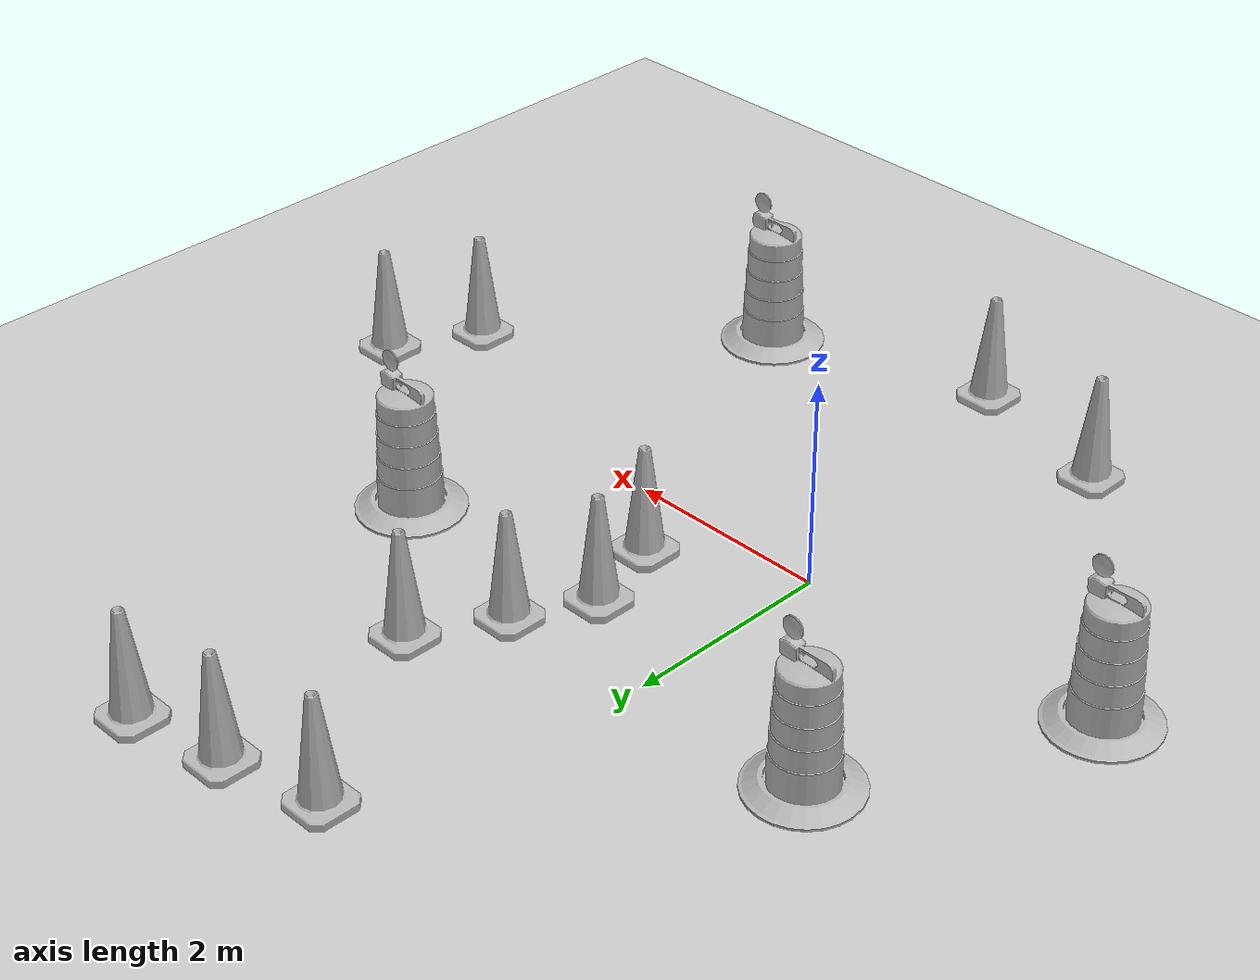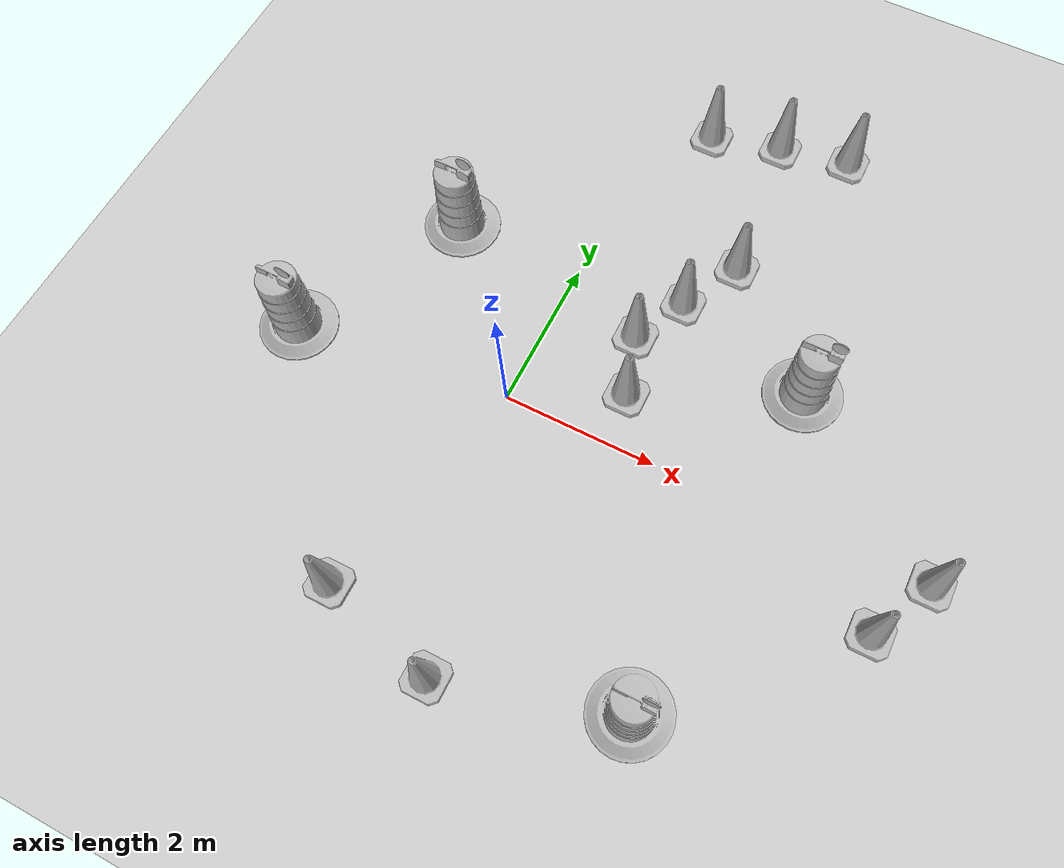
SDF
<sdf version="1.7">
 <world name="default">
  <light name="sun" type="directional">
   <pose>0 0 10 0 -0 0</pose>
   <diffuse>0.8 0.8 0.8 1</diffuse>
   <specular>0.2 0.2 0.2 1</specular>
   <attenuation>
    <range>1000</range>
    <constant>0.9</constant>
    <linear>0.01</linear>
    <quadratic>0.001</quadratic>
   </attenuation>
   <direction>-0.5 0.1 -0.9</direction>
   <spot><inner_angle>0</inner_angle><outer_angle>0</outer_angle><falloff>0</falloff></spot>
  </light>
  <model name="ground_plane">
   <static>1</static>
   <link name="link">
    <collision name="collision">
     <geometry><plane><normal>0 0 1</normal><size>100 100</size></plane></geometry>
     <surface>
      <contact><collide_bitmask>65535</collide_bitmask></contact>
      <friction><ode><mu>100</mu><mu2>50</mu2></ode></friction>
     </surface>
    </collision>
    <visual name="visual">
     <cast_shadows>0</cast_shadows>
     <geometry><plane><normal>0 0 1</normal><size>100 100</size></plane></geometry>
     <material>
      <script><uri>file://media/materials/scripts/gazebo.material</uri><name>Gazebo/Grey</name></script>
     </material>
    </visual>
   </link>
  </model>
  <gravity>0 0 -9.8</gravity>
  <magnetic_field>6e-06 2.3e-05 -4.2e-05</magnetic_field>
  <atmosphere type="adiabatic"/>
  <physics type="ode">
   <max_step_size>0.001</max_step_size>
   <real_time_factor>1</real_time_factor>
   <real_time_update_rate>1000</real_time_update_rate>
  </physics>
  <scene><ambient>0.4 0.4 0.4 1</ambient><background>0.7 0.7 0.7 1</background><shadows>1</shadows></scene>
  <audio><device>default</device></audio>
  <spherical_coordinates>
   <surface_model>EARTH_WGS84</surface_model>
   <latitude_deg>0</latitude_deg>
   <longitude_deg>0</longitude_deg>
   <elevation>0</elevation>
   <heading_deg>0</heading_deg>
  </spherical_coordinates>
  <model name="Construction Barrel">
   <link name="link">
    <inertial>
     <pose>0 0 0.4 0 -0 0</pose>
     <mass>500</mass>
     <inertia><ixx>51.2096</ixx><iyy>51.2096</iyy><izz>25</izz><ixy>0</ixy><ixz>0</ixz><iyz>0</iyz></inertia>
    </inertial>
    <collision name="collision">
     <geometry><mesh><uri>model://construction_barrel/meshes/construction_barrel.dae</uri></mesh></geometry>
    </collision>
    <visual name="visual">
     <geometry><mesh><uri>model://construction_barrel/meshes/construction_barrel.dae</uri></mesh></geometry>
    </visual>
   </link>
   <pose>-1.7306 1.97182 -0 0 -0 -2.5e-05</pose>
  </model>
  <model name="Construction Barrel_0">
   <link name="link">
    <inertial>
     <pose>0 0 0.4 0 -0 0</pose>
     <mass>500</mass>
     <inertia><ixx>51.2096</ixx><iyy>51.2096</iyy><izz>25</izz><ixy>0</ixy><ixz>0</ixz><iyz>0</iyz></inertia>
    </inertial>
    <collision name="collision">
     <geometry><mesh><uri>model://construction_barrel/meshes/construction_barrel.dae</uri></mesh></geometry>
    </collision>
    <visual name="visual">
     <geometry><mesh><uri>model://construction_barrel/meshes/construction_barrel.dae</uri></mesh></geometry>
    </visual>
   </link>
   <pose>-2.87179 -0.286902 -0 0 -0 -2.4e-05</pose>
  </model>
  <model name="Construction Barrel_1">
   <link name="link">
    <inertial>
     <pose>0 0 0.4 0 -0 0</pose>
     <mass>500</mass>
     <inertia><ixx>51.2096</ixx><iyy>51.2096</iyy><izz>25</izz><ixy>0</ixy><ixz>0</ixz><iyz>0</iyz></inertia>
    </inertial>
    <collision name="collision">
     <geometry><mesh><uri>model://construction_barrel/meshes/construction_barrel.dae</uri></mesh></geometry>
    </collision>
    <visual name="visual">
     <geometry><mesh><uri>model://construction_barrel/meshes/construction_barrel.dae</uri></mesh></geometry>
    </visual>
   </link>
   <pose>2.99516 -2.75146 -0 0 -0 -2.2e-05</pose>
  </model>
  <model name="Construction Barrel_2">
   <link name="link">
    <inertial>
     <pose>0 0 0.4 0 -0 0</pose>
     <mass>500</mass>
     <inertia><ixx>51.2096</ixx><iyy>51.2096</iyy><izz>25</izz><ixy>0</ixy><ixz>0</ixz><iyz>0</iyz></inertia>
    </inertial>
    <collision name="collision">
     <geometry><mesh><uri>model://construction_barrel/meshes/construction_barrel.dae</uri></mesh></geometry>
    </collision>
    <visual name="visual">
     <geometry><mesh><uri>model://construction_barrel/meshes/construction_barrel.dae</uri></mesh></geometry>
    </visual>
   </link>
   <pose>3.27615 1.66603 -0 0 -0 -2.1e-05</pose>
  </model>
  <model name="Construction Cone">
   <link name="link">
    <collision name="collision">
     <geometry>
      <mesh><scale>10 10 10</scale><uri>model://construction_cone/meshes/construction_cone.dae</uri></mesh>
     </geometry>
    </collision>
    <visual name="visual">
     <geometry>
      <mesh><scale>10 10 10</scale><uri>model://construction_cone/meshes/construction_cone.dae</uri></mesh>
     </geometry>
    </visual>
    <inertial>
     <inertia><ixx>1</ixx><ixy>0</ixy><ixz>0</ixz><iyy>1</iyy><iyz>0</iyz><izz>1</izz></inertia>
     <mass>1</mass>
    </inertial>
   </link>
   <pose>0.702193 4.73754 -0 0 -0 0</pose>
  </model>
  <model name="Construction Cone_0">
   <link name="link">
    <collision name="collision">
     <geometry>
      <mesh><scale>10 10 10</scale><uri>model://construction_cone/meshes/construction_cone.dae</uri></mesh>
     </geometry>
    </collision>
    <visual name="visual">
     <geometry>
      <mesh><scale>10 10 10</scale><uri>model://construction_cone/meshes/construction_cone.dae</uri></mesh>
     </geometry>
    </visual>
    <inertial>
     <inertia><ixx>1</ixx><ixy>0</ixy><ixz>0</ixz><iyy>1</iyy><iyz>0</iyz><izz>1</izz></inertia>
     <mass>1</mass>
    </inertial>
   </link>
   <pose>1.63015 4.97607 -0 -0 -0 -0</pose>
  </model>
  <model name="Construction Cone_1">
   <link name="link">
    <collision name="collision">
     <geometry>
      <mesh><scale>10 10 10</scale><uri>model://construction_cone/meshes/construction_cone.dae</uri></mesh>
     </geometry>
    </collision>
    <visual name="visual">
     <geometry>
      <mesh><scale>10 10 10</scale><uri>model://construction_cone/meshes/construction_cone.dae</uri></mesh>
     </geometry>
    </visual>
    <inertial>
     <inertia><ixx>1</ixx><ixy>0</ixy><ixz>0</ixz><iyy>1</iyy><iyz>0</iyz><izz>1</izz></inertia>
     <mass>1</mass>
    </inertial>
   </link>
   <pose>2.5576 5.16222 -0 0 -0 0</pose>
  </model>
  <model name="Construction Cone_2">
   <link name="link">
    <collision name="collision">
     <geometry>
      <mesh><scale>10 10 10</scale><uri>model://construction_cone/meshes/construction_cone.dae</uri></mesh>
     </geometry>
    </collision>
    <visual name="visual">
     <geometry>
      <mesh><scale>10 10 10</scale><uri>model://construction_cone/meshes/construction_cone.dae</uri></mesh>
     </geometry>
    </visual>
    <inertial>
     <inertia><ixx>1</ixx><ixy>0</ixy><ixz>0</ixz><iyy>1</iyy><iyz>0</iyz><izz>1</izz></inertia>
     <mass>1</mass>
    </inertial>
   </link>
   <pose>1.07196 1.46142 -0 0 -0 0</pose>
  </model>
  <model name="Construction Cone_3">
   <link name="link">
    <collision name="collision">
     <geometry>
      <mesh><scale>10 10 10</scale><uri>model://construction_cone/meshes/construction_cone.dae</uri></mesh>
     </geometry>
    </collision>
    <visual name="visual">
     <geometry>
      <mesh><scale>10 10 10</scale><uri>model://construction_cone/meshes/construction_cone.dae</uri></mesh>
     </geometry>
    </visual>
    <inertial>
     <inertia><ixx>1</ixx><ixy>0</ixy><ixz>0</ixz><iyy>1</iyy><iyz>0</iyz><izz>1</izz></inertia>
     <mass>1</mass>
    </inertial>
   </link>
   <pose>1.42505 2.16036 0 -0 -0 -0</pose>
  </model>
  <model name="Construction Cone_4">
   <link name="link">
    <collision name="collision">
     <geometry>
      <mesh><scale>10 10 10</scale><uri>model://construction_cone/meshes/construction_cone.dae</uri></mesh>
     </geometry>
    </collision>
    <visual name="visual">
     <geometry>
      <mesh><scale>10 10 10</scale><uri>model://construction_cone/meshes/construction_cone.dae</uri></mesh>
     </geometry>
    </visual>
    <inertial>
     <inertia><ixx>1</ixx><ixy>0</ixy><ixz>0</ixz><iyy>1</iyy><iyz>0</iyz><izz>1</izz></inertia>
     <mass>1</mass>
    </inertial>
   </link>
   <pose>1.84143 2.94939 -0 0 -0 0</pose>
  </model>
  <model name="Construction Cone_5">
   <link name="link">
    <collision name="collision">
     <geometry>
      <mesh><scale>10 10 10</scale><uri>model://construction_cone/meshes/construction_cone.dae</uri></mesh>
     </geometry>
    </collision>
    <visual name="visual">
     <geometry>
      <mesh><scale>10 10 10</scale><uri>model://construction_cone/meshes/construction_cone.dae</uri></mesh>
     </geometry>
    </visual>
    <inertial>
     <inertia><ixx>1</ixx><ixy>0</ixy><ixz>0</ixz><iyy>1</iyy><iyz>0</iyz><izz>1</izz></inertia>
     <mass>1</mass>
    </inertial>
   </link>
   <pose>1.3138 0.680195 -0 0 -1e-06 0</pose>
  </model>
  <model name="Construction Cone_6">
   <link name="link">
    <collision name="collision">
     <geometry>
      <mesh><scale>10 10 10</scale><uri>model://construction_cone/meshes/construction_cone.dae</uri></mesh>
     </geometry>
    </collision>
    <visual name="visual">
     <geometry>
      <mesh><scale>10 10 10</scale><uri>model://construction_cone/meshes/construction_cone.dae</uri></mesh>
     </geometry>
    </visual>
    <inertial>
     <inertia><ixx>1</ixx><ixy>0</ixy><ixz>0</ixz><iyy>1</iyy><iyz>0</iyz><izz>1</izz></inertia>
     <mass>1</mass>
    </inertial>
   </link>
   <pose>-0.724558 -2.98074 -0 1e-06 -0 0</pose>
  </model>
  <model name="Construction Cone_7">
   <link name="link">
    <collision name="collision">
     <geometry>
      <mesh><scale>10 10 10</scale><uri>model://construction_cone/meshes/construction_cone.dae</uri></mesh>
     </geometry>
    </collision>
    <visual name="visual">
     <geometry>
      <mesh><scale>10 10 10</scale><uri>model://construction_cone/meshes/construction_cone.dae</uri></mesh>
     </geometry>
    </visual>
    <inertial>
     <inertia><ixx>1</ixx><ixy>0</ixy><ixz>0</ixz><iyy>1</iyy><iyz>0</iyz><izz>1</izz></inertia>
     <mass>1</mass>
    </inertial>
   </link>
   <pose>0.802477 -3.40739 -0 0 -0 0</pose>
  </model>
  <model name="Construction Cone_8">
   <link name="link">
    <collision name="collision">
     <geometry>
      <mesh><scale>10 10 10</scale><uri>model://construction_cone/meshes/construction_cone.dae</uri></mesh>
     </geometry>
    </collision>
    <visual name="visual">
     <geometry>
      <mesh><scale>10 10 10</scale><uri>model://construction_cone/meshes/construction_cone.dae</uri></mesh>
     </geometry>
    </visual>
    <inertial>
     <inertia><ixx>1</ixx><ixy>0</ixy><ixz>0</ixz><iyy>1</iyy><iyz>0</iyz><izz>1</izz></inertia>
     <mass>1</mass>
    </inertial>
   </link>
   <pose>5.05868 -0.764832 -0 0 -1e-06 0</pose>
  </model>
  <model name="Construction Cone_9">
   <link name="link">
    <collision name="collision">
     <geometry>
      <mesh><scale>10 10 10</scale><uri>model://construction_cone/meshes/construction_cone.dae</uri></mesh>
     </geometry>
    </collision>
    <visual name="visual">
     <geometry>
      <mesh><scale>10 10 10</scale><uri>model://construction_cone/meshes/construction_cone.dae</uri></mesh>
     </geometry>
    </visual>
    <inertial>
     <inertia><ixx>1</ixx><ixy>0</ixy><ixz>0</ixz><iyy>1</iyy><iyz>0</iyz><izz>1</izz></inertia>
     <mass>1</mass>
    </inertial>
   </link>
   <pose>5.49195 0.066704 -0 0 -0 0</pose>
  </model>
 </world>
</sdf>
